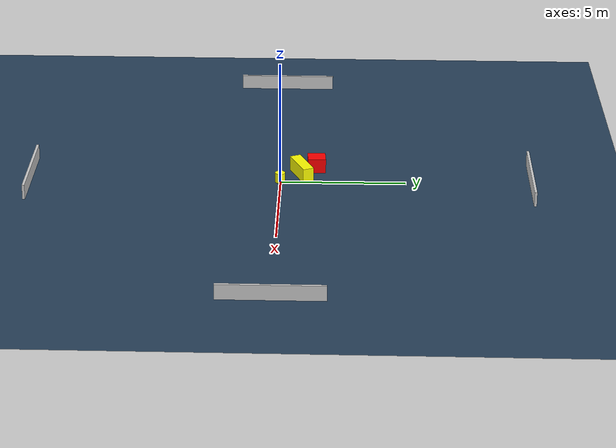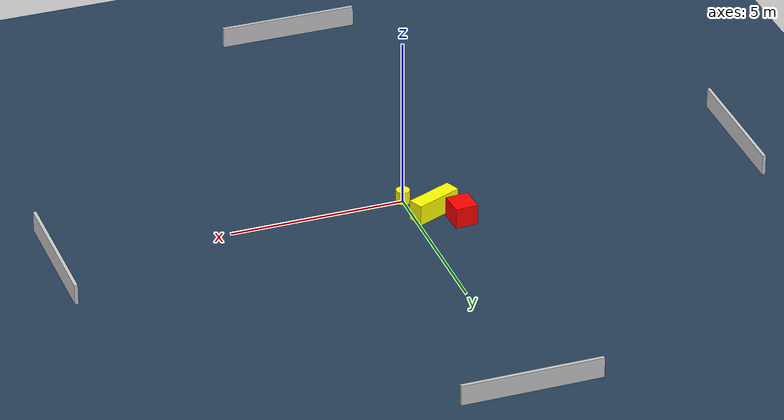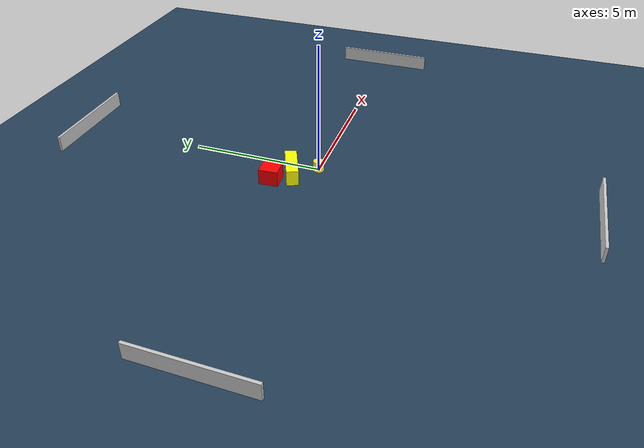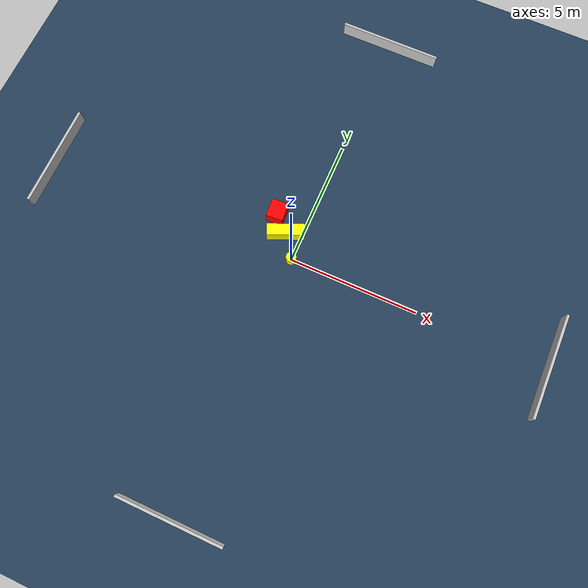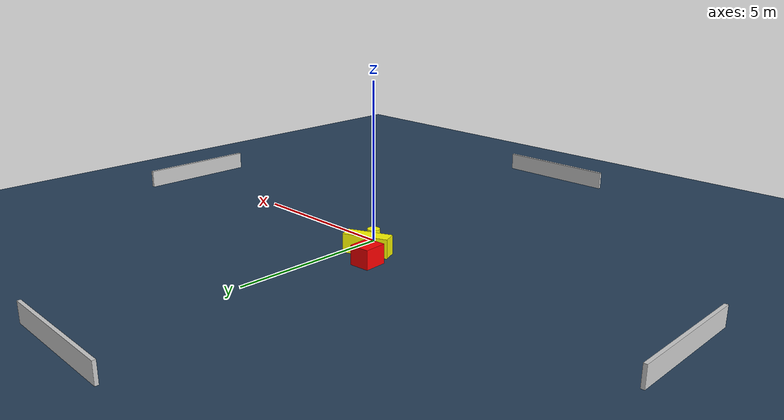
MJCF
<?xml version="1.0" ?>
<mujoco model="generated_environment">
  <option timestep="0.01" integrator="RK4" cone="elliptic"/>
  <default>
    <geom density="1"/>
  </default>
  <asset>
    <texture builtin="gradient" height="3072" name="skybox" rgb1="0.3 0.5 0.7" rgb2="0 0 0" type="skybox" width="512"/>
    <texture builtin="checker" height="300" name="groundplane" rgb1="0.2 0.3 0.4" rgb2="0.1 0.2 0.3" type="2d" width="300"/>
    <material name="groundplane" reflectance="0.2" texrepeat="5 5" texture="groundplane"/>
  </asset>
  <worldbody>
    <light dir="0 0 -1" directional="true" pos="0 0 1.5"/>
    <geom condim="3" friction="0.5 0.005 0.001" material="groundplane" name="floor" pos="0 0 0" size="0 0 0.05" type="plane"/>
    <body name="walls">
      <geom name="wall_1" condim="4" pos="-10.0 0.0 0.3" rgba="0.800000011920929 0.800000011920929 0.800000011920929 1.0" size="0.05 2.0 0.3" type="box"/>
      <geom name="wall_2" condim="4" pos="10.0 0.0 0.3" rgba="0.800000011920929 0.800000011920929 0.800000011920929 1.0" size="0.05 2.0 0.3" type="box"/>
      <geom name="wall_3" condim="4" pos="0.0 -10.0 0.3" rgba="0.800000011920929 0.800000011920929 0.800000011920929 1.0" size="2.0 0.05 0.3" type="box"/>
      <geom name="wall_4" condim="4" pos="0.0 10.0 0.3" rgba="0.800000011920929 0.800000011920929 0.800000011920929 1.0" size="2.0 0.05 0.3" type="box"/>
    </body>
    <body name="robot">
      <joint name="joint_x" type="slide" pos="0 0 0" axis="1 0 0"/>
      <joint name="joint_y" type="slide" pos="0 0 0" axis="0 1 0"/>
      <geom name="robot" type="cylinder" pos="0.0 0.0 0.2" size="0.2 0.2 0.0" mass="5.0" friction="1.0 0.005 0.0001" condim="4" rgba="1.0 1.0 0.0 1.0"/>
    </body>
    <body name="obstacle_1_movable">
      <geom name="obstacle_1_movable" condim="4" pos="-0.6053187236043316 0.8477643867602185 0.3" euler="0 0 113.37823465712037" friction="0.0 0.005 0.001" rgba="1.0 1.0 0.0 1.0" size="0.2237745951101826 0.7100142375307392 0.3" type="box" mass="0.1"/>
      <joint type="free"/>
    </body>
    <body name="obstacle_2_static">
      <geom name="obstacle_2_static" condim="4" pos="-1.2061161314798194 1.4327867452558676 0.3" euler="0 0 3.4148263196847006" friction="0.0 0.005 0.001" rgba="1.0 0.0 0.0 1.0" size="0.32509027885358377 0.35831444437120297 0.3" type="box"/>
    </body>
  </worldbody>
  <actuator>
    <motor name="actuator_x" joint="joint_x" gear="1" ctrlrange="-1 1"/>
    <motor name="actuator_y" joint="joint_y" gear="1" ctrlrange="-1 1"/>
  </actuator>
</mujoco>
